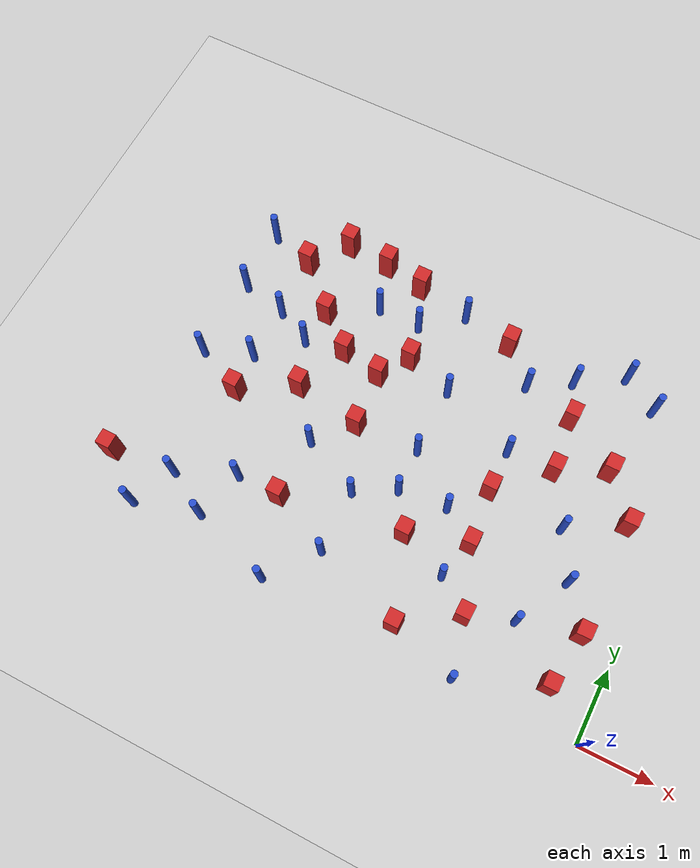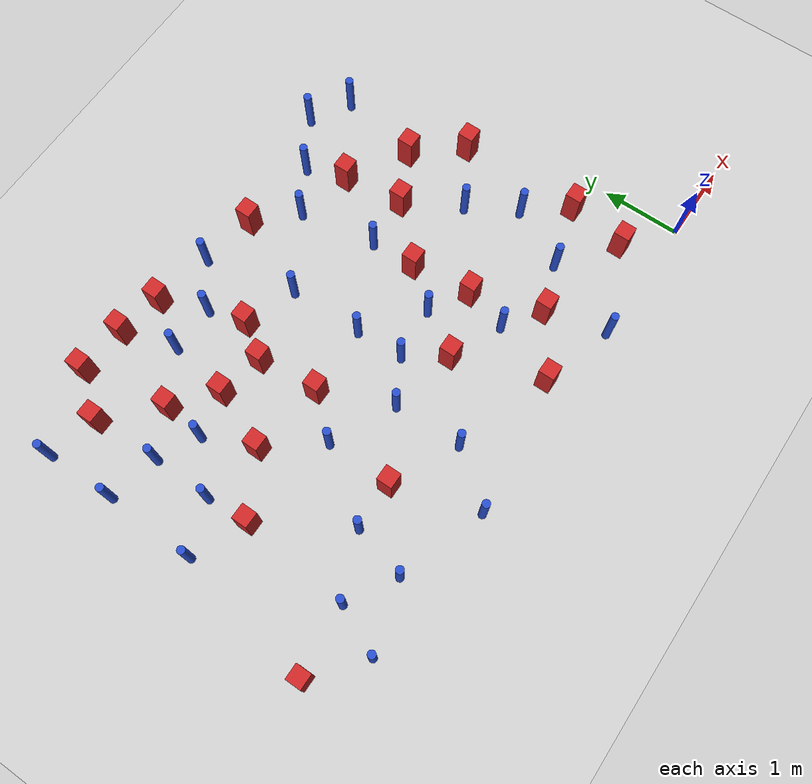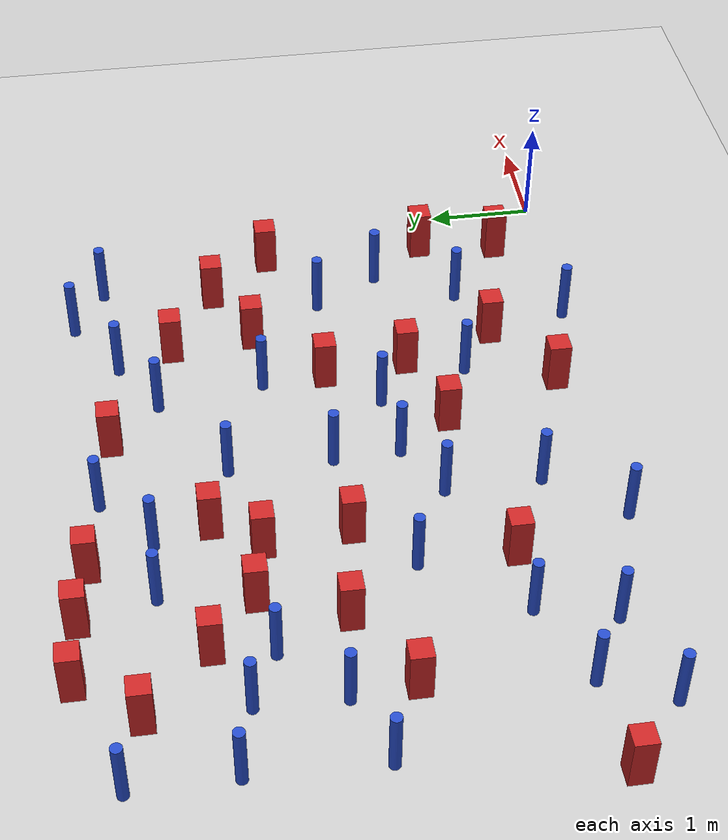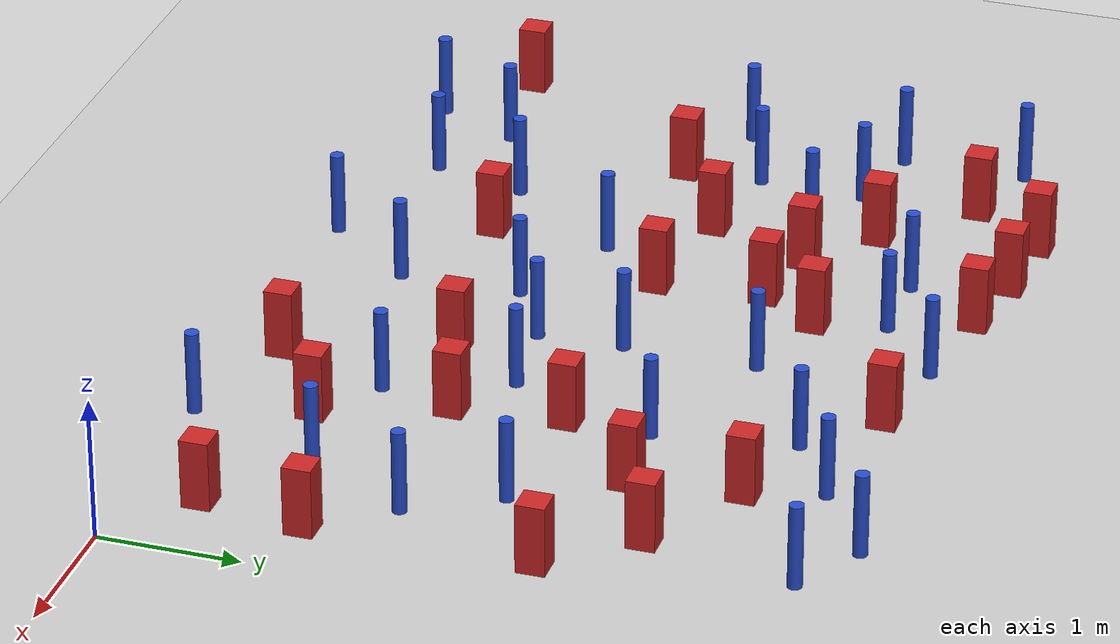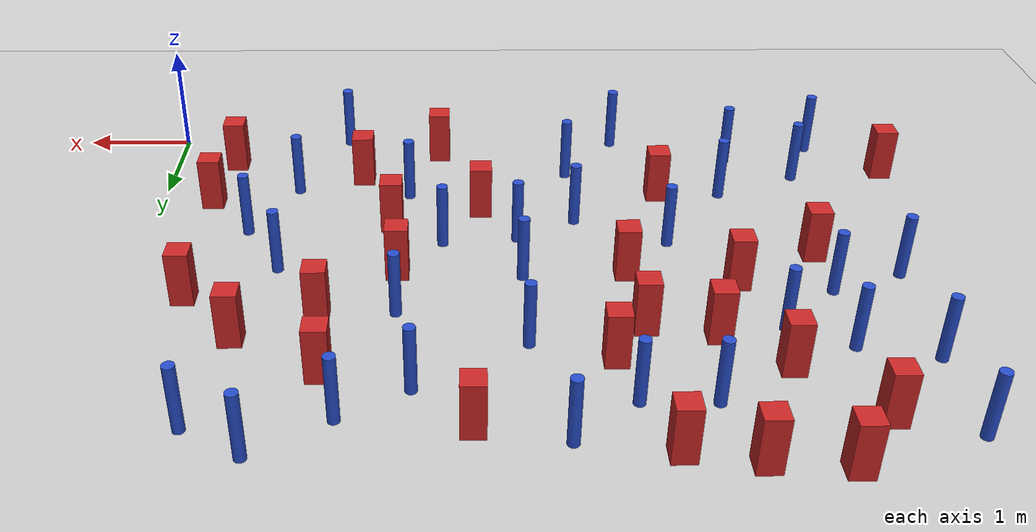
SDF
<sdf version="1.6">
 <world name="default">
  <model name="ground_plane">
   <static>1</static>
   <link name="link">
    <collision name="collision">
     <geometry><plane><normal>0 0 1</normal><size>100 100</size></plane></geometry>
     <surface><friction><ode><mu>100</mu><mu2>50</mu2></ode></friction></surface>
    </collision>
    <visual name="visual">
     <cast_shadows>0</cast_shadows>
     <geometry><plane><normal>0 0 1</normal><size>100 100</size></plane></geometry>
     <material>
      <ambient>1.0 1.0 1.0 1.0</ambient>
      <diffuse>0.8 0.8 0.8 1.0</diffuse>
      <specular>0.01 0.01 0.01 1.000000</specular>
     </material>
    </visual>
   </link>
  </model>
  <model name="pole_obstacle8">
   <static>true</static>
   <pose>-6.08702871767 0.780970293844 2.88873142074e-08 -9.90536689837e-09 4.60219948989e-07 -1.2096599496e-07</pose>
   <link name="link">
    <pose>0 0 0.3 0 -0 0</pose>
    <inertial>
     <mass>1</mass>
     <inertia><ixx>0.145833</ixx><ixy>0</ixy><ixz>0</ixz><iyy>0.145833</iyy><iyz>0</iyz><izz>0.125</izz></inertia>
    </inertial>
    <collision name="collision">
     <geometry><cylinder><radius>0.05</radius><length>.6</length></cylinder></geometry>
    </collision>
    <visual name="visual">
     <geometry><cylinder><radius>0.05</radius><length>.6</length></cylinder></geometry>
     <material>
      <script><name>Gazebo/Blue</name><uri>file://media/materials/scripts/gazebo.material</uri></script>
     </material>
    </visual>
   </link>
  </model>
  <model name="pole_obstacle18">
   <static>true</static>
   <pose>-2.46120198781 3.99202360485 2.88873142074e-08 -9.90536690801e-09 4.60219948966e-07 -1.20965994976e-07</pose>
   <link name="link">
    <pose>0 0 0.3 0 -0 0</pose>
    <inertial>
     <mass>1</mass>
     <inertia><ixx>0.145833</ixx><ixy>0</ixy><ixz>0</ixz><iyy>0.145833</iyy><iyz>0</iyz><izz>0.125</izz></inertia>
    </inertial>
    <collision name="collision">
     <geometry><cylinder><radius>0.05</radius><length>.6</length></cylinder></geometry>
    </collision>
    <visual name="visual">
     <geometry><cylinder><radius>0.05</radius><length>.6</length></cylinder></geometry>
     <material>
      <script><name>Gazebo/Blue</name><uri>file://media/materials/scripts/gazebo.material</uri></script>
     </material>
    </visual>
   </link>
  </model>
  <model name="pole_obstacle19">
   <static>true</static>
   <pose>-4.16638657633 4.14378427516 2.88873142074e-08 -9.90536690842e-09 4.60219948965e-07 -1.20965994976e-07</pose>
   <link name="link">
    <pose>0 0 0.3 0 -0 0</pose>
    <inertial>
     <mass>1</mass>
     <inertia><ixx>0.145833</ixx><ixy>0</ixy><ixz>0</ixz><iyy>0.145833</iyy><iyz>0</iyz><izz>0.125</izz></inertia>
    </inertial>
    <collision name="collision">
     <geometry><cylinder><radius>0.05</radius><length>.6</length></cylinder></geometry>
    </collision>
    <visual name="visual">
     <geometry><cylinder><radius>0.05</radius><length>.6</length></cylinder></geometry>
     <material>
      <script><name>Gazebo/Blue</name><uri>file://media/materials/scripts/gazebo.material</uri></script>
     </material>
    </visual>
   </link>
  </model>
  <model name="square_post_obstacle17">
   <static>true</static>
   <pose>-4.39659818621 4.70377155817 8.22691968438e-08 7.2212513382e-06 -7.54495500217e-07 2.29674213826e-05</pose>
   <link name="link">
    <pose>0 0 0.25 0 -0 0</pose>
    <inertial>
     <mass>100</mass>
     <inertia>
      <ixx>0.166667</ixx>
      <ixy>0</ixy>
      <ixz>0</ixz>
      <iyy>0.166667</iyy>
      <iyz>0</iyz>
      <izz>0.166667</izz>
     </inertia>
    </inertial>
    <collision name="collision"><geometry><box><size>.2 .2 .5</size></box></geometry></collision>
    <visual name="visual">
     <geometry><box><size>.2 .2 .5</size></box></geometry>
     <material>
      <script><name>Gazebo/Red</name><uri>file://media/materials/scripts/gazebo.material</uri></script>
     </material>
    </visual>
   </link>
  </model>
  <model name="pole_obstacle35">
   <static>true</static>
   <pose>-5.96639975818 3.48804016924 2.88873142074e-08 -9.90536690245e-09 4.6021994898e-07 -1.20965994966e-07</pose>
   <link name="link">
    <pose>0 0 0.3 0 -0 0</pose>
    <inertial>
     <mass>1</mass>
     <inertia><ixx>0.145833</ixx><ixy>0</ixy><ixz>0</ixz><iyy>0.145833</iyy><iyz>0</iyz><izz>0.125</izz></inertia>
    </inertial>
    <collision name="collision">
     <geometry><cylinder><radius>0.05</radius><length>.6</length></cylinder></geometry>
    </collision>
    <visual name="visual">
     <geometry><cylinder><radius>0.05</radius><length>.6</length></cylinder></geometry>
     <material>
      <script><name>Gazebo/Blue</name><uri>file://media/materials/scripts/gazebo.material</uri></script>
     </material>
    </visual>
   </link>
  </model>
  <model name="square_post_obstacle33">
   <static>true</static>
   <pose>-5.39392176758 3.75570370968 8.22691968438e-08 7.2212513382e-06 -7.54495500217e-07 2.29674213826e-05</pose>
   <link name="link">
    <pose>0 0 0.25 0 -0 0</pose>
    <inertial>
     <mass>100</mass>
     <inertia>
      <ixx>0.166667</ixx>
      <ixy>0</ixy>
      <ixz>0</ixz>
      <iyy>0.166667</iyy>
      <iyz>0</iyz>
      <izz>0.166667</izz>
     </inertia>
    </inertial>
    <collision name="collision"><geometry><box><size>.2 .2 .5</size></box></geometry></collision>
    <visual name="visual">
     <geometry><box><size>.2 .2 .5</size></box></geometry>
     <material>
      <script><name>Gazebo/Red</name><uri>file://media/materials/scripts/gazebo.material</uri></script>
     </material>
    </visual>
   </link>
  </model>
  <model name="pole_obstacle44">
   <static>true</static>
   <pose>-3.3786044187 3.43538637885 2.88873142074e-08 -9.90536689597e-09 4.60219948995e-07 -1.20965994957e-07</pose>
   <link name="link">
    <pose>0 0 0.3 0 -0 0</pose>
    <inertial>
     <mass>1</mass>
     <inertia><ixx>0.145833</ixx><ixy>0</ixy><ixz>0</ixz><iyy>0.145833</iyy><iyz>0</iyz><izz>0.125</izz></inertia>
    </inertial>
    <collision name="collision">
     <geometry><cylinder><radius>0.05</radius><length>.6</length></cylinder></geometry>
    </collision>
    <visual name="visual">
     <geometry><cylinder><radius>0.05</radius><length>.6</length></cylinder></geometry>
     <material>
      <script><name>Gazebo/Blue</name><uri>file://media/materials/scripts/gazebo.material</uri></script>
     </material>
    </visual>
   </link>
  </model>
  <model name="square_post_obstacle37">
   <static>true</static>
   <pose>-2.61984374398 0.304856421643 8.22691968438e-08 7.2212513382e-06 -7.54495500217e-07 2.29674213826e-05</pose>
   <link name="link">
    <pose>0 0 0.25 0 -0 0</pose>
    <inertial>
     <mass>100</mass>
     <inertia>
      <ixx>0.166667</ixx>
      <ixy>0</ixy>
      <ixz>0</ixz>
      <iyy>0.166667</iyy>
      <iyz>0</iyz>
      <izz>0.166667</izz>
     </inertia>
    </inertial>
    <collision name="collision"><geometry><box><size>.2 .2 .5</size></box></geometry></collision>
    <visual name="visual">
     <geometry><box><size>.2 .2 .5</size></box></geometry>
     <material>
      <script><name>Gazebo/Red</name><uri>file://media/materials/scripts/gazebo.material</uri></script>
     </material>
    </visual>
   </link>
  </model>
  <model name="pole_obstacle49">
   <static>true</static>
   <pose>-4.76651468999 4.15278222639 2.88873142074e-08 -9.90536690842e-09 4.60219948965e-07 -1.20965994976e-07</pose>
   <link name="link">
    <pose>0 0 0.3 0 -0 0</pose>
    <inertial>
     <mass>1</mass>
     <inertia><ixx>0.145833</ixx><ixy>0</ixy><ixz>0</ixz><iyy>0.145833</iyy><iyz>0</iyz><izz>0.125</izz></inertia>
    </inertial>
    <collision name="collision">
     <geometry><cylinder><radius>0.05</radius><length>.6</length></cylinder></geometry>
    </collision>
    <visual name="visual">
     <geometry><cylinder><radius>0.05</radius><length>.6</length></cylinder></geometry>
     <material>
      <script><name>Gazebo/Blue</name><uri>file://media/materials/scripts/gazebo.material</uri></script>
     </material>
    </visual>
   </link>
  </model>
  <model name="pole_obstacle54">
   <static>true</static>
   <pose>-6.63152640773 2.47795766279 2.88873142074e-08 -9.90536690245e-09 4.6021994898e-07 -1.20965994966e-07</pose>
   <link name="link">
    <pose>0 0 0.3 0 -0 0</pose>
    <inertial>
     <mass>1</mass>
     <inertia><ixx>0.145833</ixx><ixy>0</ixy><ixz>0</ixz><iyy>0.145833</iyy><iyz>0</iyz><izz>0.125</izz></inertia>
    </inertial>
    <collision name="collision">
     <geometry><cylinder><radius>0.05</radius><length>.6</length></cylinder></geometry>
    </collision>
    <visual name="visual">
     <geometry><cylinder><radius>0.05</radius><length>.6</length></cylinder></geometry>
     <material>
      <script><name>Gazebo/Blue</name><uri>file://media/materials/scripts/gazebo.material</uri></script>
     </material>
    </visual>
   </link>
  </model>
  <model name="pole_obstacle63">
   <static>true</static>
   <pose>-1.28793393635 4.71703509734 2.88873142074e-08 -9.90536689852e-09 4.60219948989e-07 -1.2096599496e-07</pose>
   <link name="link">
    <pose>0 0 0.3 0 -0 0</pose>
    <inertial>
     <mass>1</mass>
     <inertia><ixx>0.145833</ixx><ixy>0</ixy><ixz>0</ixz><iyy>0.145833</iyy><iyz>0</iyz><izz>0.125</izz></inertia>
    </inertial>
    <collision name="collision">
     <geometry><cylinder><radius>0.05</radius><length>.6</length></cylinder></geometry>
    </collision>
    <visual name="visual">
     <geometry><cylinder><radius>0.05</radius><length>.6</length></cylinder></geometry>
     <material>
      <script><name>Gazebo/Blue</name><uri>file://media/materials/scripts/gazebo.material</uri></script>
     </material>
    </visual>
   </link>
  </model>
  <model name="square_post_obstacle52">
   <static>true</static>
   <pose>-1.65613493312 3.04439027999 8.22691968438e-08 7.2212513382e-06 -7.54495500217e-07 2.29674213826e-05</pose>
   <link name="link">
    <pose>0 0 0.25 0 -0 0</pose>
    <inertial>
     <mass>100</mass>
     <inertia>
      <ixx>0.166667</ixx>
      <ixy>0</ixy>
      <ixz>0</ixz>
      <iyy>0.166667</iyy>
      <iyz>0</iyz>
      <izz>0.166667</izz>
     </inertia>
    </inertial>
    <collision name="collision"><geometry><box><size>.2 .2 .5</size></box></geometry></collision>
    <visual name="visual">
     <geometry><box><size>.2 .2 .5</size></box></geometry>
     <material>
      <script><name>Gazebo/Red</name><uri>file://media/materials/scripts/gazebo.material</uri></script>
     </material>
    </visual>
   </link>
  </model>
  <model name="square_post_obstacle53">
   <static>true</static>
   <pose>-0.511574262024 2.79065879667 8.22691968438e-08 7.2212513382e-06 -7.54495500217e-07 2.29674213826e-05</pose>
   <link name="link">
    <pose>0 0 0.25 0 -0 0</pose>
    <inertial>
     <mass>100</mass>
     <inertia>
      <ixx>0.166667</ixx>
      <ixy>0</ixy>
      <ixz>0</ixz>
      <iyy>0.166667</iyy>
      <iyz>0</iyz>
      <izz>0.166667</izz>
     </inertia>
    </inertial>
    <collision name="collision"><geometry><box><size>.2 .2 .5</size></box></geometry></collision>
    <visual name="visual">
     <geometry><box><size>.2 .2 .5</size></box></geometry>
     <material>
      <script><name>Gazebo/Red</name><uri>file://media/materials/scripts/gazebo.material</uri></script>
     </material>
    </visual>
   </link>
  </model>
  <model name="square_post_obstacle54">
   <static>true</static>
   <pose>-1.89081912094 0.789639610185 8.22691968438e-08 7.2212513382e-06 -7.54495500217e-07 2.29674213826e-05</pose>
   <link name="link">
    <pose>0 0 0.25 0 -0 0</pose>
    <inertial>
     <mass>100</mass>
     <inertia>
      <ixx>0.166667</ixx>
      <ixy>0</ixy>
      <ixz>0</ixz>
      <iyy>0.166667</iyy>
      <iyz>0</iyz>
      <izz>0.166667</izz>
     </inertia>
    </inertial>
    <collision name="collision"><geometry><box><size>.2 .2 .5</size></box></geometry></collision>
    <visual name="visual">
     <geometry><box><size>.2 .2 .5</size></box></geometry>
     <material>
      <script><name>Gazebo/Red</name><uri>file://media/materials/scripts/gazebo.material</uri></script>
     </material>
    </visual>
   </link>
  </model>
  <model name="square_post_obstacle62">
   <static>true</static>
   <pose>-0.491331566795 1.2318013536 8.22691968438e-08 7.2212513382e-06 -7.54495500217e-07 2.29674213826e-05</pose>
   <link name="link">
    <pose>0 0 0.25 0 -0 0</pose>
    <inertial>
     <mass>100</mass>
     <inertia>
      <ixx>0.166667</ixx>
      <ixy>0</ixy>
      <ixz>0</ixz>
      <iyy>0.166667</iyy>
      <iyz>0</iyz>
      <izz>0.166667</izz>
     </inertia>
    </inertial>
    <collision name="collision"><geometry><box><size>.2 .2 .5</size></box></geometry></collision>
    <visual name="visual">
     <geometry><box><size>.2 .2 .5</size></box></geometry>
     <material>
      <script><name>Gazebo/Red</name><uri>file://media/materials/scripts/gazebo.material</uri></script>
     </material>
    </visual>
   </link>
  </model>
  <model name="pole_obstacle74">
   <static>true</static>
   <pose>-3.87952141674 1.58401777399 2.88873142074e-08 -9.90536691123e-09 4.60219948959e-07 -1.20965994982e-07</pose>
   <link name="link">
    <pose>0 0 0.3 0 -0 0</pose>
    <inertial>
     <mass>1</mass>
     <inertia><ixx>0.145833</ixx><ixy>0</ixy><ixz>0</ixz><iyy>0.145833</iyy><iyz>0</iyz><izz>0.125</izz></inertia>
    </inertial>
    <collision name="collision">
     <geometry><cylinder><radius>0.05</radius><length>.6</length></cylinder></geometry>
    </collision>
    <visual name="visual">
     <geometry><cylinder><radius>0.05</radius><length>.6</length></cylinder></geometry>
     <material>
      <script><name>Gazebo/Blue</name><uri>file://media/materials/scripts/gazebo.material</uri></script>
     </material>
    </visual>
   </link>
  </model>
  <model name="pole_obstacle75">
   <static>true</static>
   <pose>-5.46699281634 3.24095808692 2.88873142074e-08 -9.90536690245e-09 4.6021994898e-07 -1.20965994966e-07</pose>
   <link name="link">
    <pose>0 0 0.3 0 -0 0</pose>
    <inertial>
     <mass>1</mass>
     <inertia><ixx>0.145833</ixx><ixy>0</ixy><ixz>0</ixz><iyy>0.145833</iyy><iyz>0</iyz><izz>0.125</izz></inertia>
    </inertial>
    <collision name="collision">
     <geometry><cylinder><radius>0.05</radius><length>.6</length></cylinder></geometry>
    </collision>
    <visual name="visual">
     <geometry><cylinder><radius>0.05</radius><length>.6</length></cylinder></geometry>
     <material>
      <script><name>Gazebo/Blue</name><uri>file://media/materials/scripts/gazebo.material</uri></script>
     </material>
    </visual>
   </link>
  </model>
  <model name="square_post_obstacle75">
   <static>true</static>
   <pose>-4.04573800707 3.64724179478 8.22691968438e-08 7.2212513382e-06 -7.54495500217e-07 2.29674213826e-05</pose>
   <link name="link">
    <pose>0 0 0.25 0 -0 0</pose>
    <inertial>
     <mass>100</mass>
     <inertia>
      <ixx>0.166667</ixx>
      <ixy>0</ixy>
      <ixz>0</ixz>
      <iyy>0.166667</iyy>
      <iyz>0</iyz>
      <izz>0.166667</izz>
     </inertia>
    </inertial>
    <collision name="collision"><geometry><box><size>.2 .2 .5</size></box></geometry></collision>
    <visual name="visual">
     <geometry><box><size>.2 .2 .5</size></box></geometry>
     <material>
      <script><name>Gazebo/Red</name><uri>file://media/materials/scripts/gazebo.material</uri></script>
     </material>
    </visual>
   </link>
  </model>
  <model name="square_post_obstacle85">
   <static>true</static>
   <pose>-6.96645169467 0.690153305032 8.22691968438e-08 7.2212513382e-06 -7.54495500217e-07 2.29674213826e-05</pose>
   <link name="link">
    <pose>0 0 0.25 0 -0 0</pose>
    <inertial>
     <mass>100</mass>
     <inertia>
      <ixx>0.166667</ixx>
      <ixy>0</ixy>
      <ixz>0</ixz>
      <iyy>0.166667</iyy>
      <iyz>0</iyz>
      <izz>0.166667</izz>
     </inertia>
    </inertial>
    <collision name="collision"><geometry><box><size>.2 .2 .5</size></box></geometry></collision>
    <visual name="visual">
     <geometry><box><size>.2 .2 .5</size></box></geometry>
     <material>
      <script><name>Gazebo/Red</name><uri>file://media/materials/scripts/gazebo.material</uri></script>
     </material>
    </visual>
   </link>
  </model>
  <model name="pole_obstacle93">
   <static>true</static>
   <pose>-2.67239039964 1.95381390901 2.88873142074e-08 -9.90536690039e-09 4.60219948984e-07 -1.20965994965e-07</pose>
   <link name="link">
    <pose>0 0 0.3 0 -0 0</pose>
    <inertial>
     <mass>1</mass>
     <inertia><ixx>0.145833</ixx><ixy>0</ixy><ixz>0</ixz><iyy>0.145833</iyy><iyz>0</iyz><izz>0.125</izz></inertia>
    </inertial>
    <collision name="collision">
     <geometry><cylinder><radius>0.05</radius><length>.6</length></cylinder></geometry>
    </collision>
    <visual name="visual">
     <geometry><cylinder><radius>0.05</radius><length>.6</length></cylinder></geometry>
     <material>
      <script><name>Gazebo/Blue</name><uri>file://media/materials/scripts/gazebo.material</uri></script>
     </material>
    </visual>
   </link>
  </model>
  <model name="pole_obstacle95">
   <static>true</static>
   <pose>-6.61462514864 4.52468187698 2.88873142074e-08 -9.90536690842e-09 4.60219948965e-07 -1.20965994976e-07</pose>
   <link name="link">
    <pose>0 0 0.3 0 -0 0</pose>
    <inertial>
     <mass>1</mass>
     <inertia><ixx>0.145833</ixx><ixy>0</ixy><ixz>0</ixz><iyy>0.145833</iyy><iyz>0</iyz><izz>0.125</izz></inertia>
    </inertial>
    <collision name="collision">
     <geometry><cylinder><radius>0.05</radius><length>.6</length></cylinder></geometry>
    </collision>
    <visual name="visual">
     <geometry><cylinder><radius>0.05</radius><length>.6</length></cylinder></geometry>
     <material>
      <script><name>Gazebo/Blue</name><uri>file://media/materials/scripts/gazebo.material</uri></script>
     </material>
    </visual>
   </link>
  </model>
  <model name="square_post_obstacle89">
   <static>true</static>
   <pose>-2.20447611351 1.65569571064 8.22691968438e-08 7.2212513382e-06 -7.54495500217e-07 2.29674213826e-05</pose>
   <link name="link">
    <pose>0 0 0.25 0 -0 0</pose>
    <inertial>
     <mass>100</mass>
     <inertia>
      <ixx>0.166667</ixx>
      <ixy>0</ixy>
      <ixz>0</ixz>
      <iyy>0.166667</iyy>
      <iyz>0</iyz>
      <izz>0.166667</izz>
     </inertia>
    </inertial>
    <collision name="collision"><geometry><box><size>.2 .2 .5</size></box></geometry></collision>
    <visual name="visual">
     <geometry><box><size>.2 .2 .5</size></box></geometry>
     <material>
      <script><name>Gazebo/Red</name><uri>file://media/materials/scripts/gazebo.material</uri></script>
     </material>
    </visual>
   </link>
  </model>
  <model name="square_post_obstacle98">
   <static>true</static>
   <pose>-5.59267079207 4.86462442567 8.22691968438e-08 7.22125133819e-06 -7.54495500217e-07 2.29674213826e-05</pose>
   <link name="link">
    <pose>0 0 0.25 0 -0 0</pose>
    <inertial>
     <mass>100</mass>
     <inertia>
      <ixx>0.166667</ixx>
      <ixy>0</ixy>
      <ixz>0</ixz>
      <iyy>0.166667</iyy>
      <iyz>0</iyz>
      <izz>0.166667</izz>
     </inertia>
    </inertial>
    <collision name="collision"><geometry><box><size>.2 .2 .5</size></box></geometry></collision>
    <visual name="visual">
     <geometry><box><size>.2 .2 .5</size></box></geometry>
     <material>
      <script><name>Gazebo/Red</name><uri>file://media/materials/scripts/gazebo.material</uri></script>
     </material>
    </visual>
   </link>
  </model>
  <model name="pole_obstacle105">
   <static>true</static>
   <pose>-5.48721661137 0.43255739235 2.88873142074e-08 -9.90536689981e-09 4.60219948986e-07 -1.20965994962e-07</pose>
   <link name="link">
    <pose>0 0 0.3 0 -0 0</pose>
    <inertial>
     <mass>1</mass>
     <inertia><ixx>0.145833</ixx><ixy>0</ixy><ixz>0</ixz><iyy>0.145833</iyy><iyz>0</iyz><izz>0.125</izz></inertia>
    </inertial>
    <collision name="collision">
     <geometry><cylinder><radius>0.05</radius><length>.6</length></cylinder></geometry>
    </collision>
    <visual name="visual">
     <geometry><cylinder><radius>0.05</radius><length>.6</length></cylinder></geometry>
     <material>
      <script><name>Gazebo/Blue</name><uri>file://media/materials/scripts/gazebo.material</uri></script>
     </material>
    </visual>
   </link>
  </model>
  <model name="pole_obstacle107">
   <static>true</static>
   <pose>-1.24091257631 2.3623283403 2.88873142074e-08 -9.90536689791e-09 4.6021994899e-07 -1.20965994959e-07</pose>
   <link name="link">
    <pose>0 0 0.3 0 -0 0</pose>
    <inertial>
     <mass>1</mass>
     <inertia><ixx>0.145833</ixx><ixy>0</ixy><ixz>0</ixz><iyy>0.145833</iyy><iyz>0</iyz><izz>0.125</izz></inertia>
    </inertial>
    <collision name="collision">
     <geometry><cylinder><radius>0.05</radius><length>.6</length></cylinder></geometry>
    </collision>
    <visual name="visual">
     <geometry><cylinder><radius>0.05</radius><length>.6</length></cylinder></geometry>
     <material>
      <script><name>Gazebo/Blue</name><uri>file://media/materials/scripts/gazebo.material</uri></script>
     </material>
    </visual>
   </link>
  </model>
  <model name="pole_obstacle113">
   <static>true</static>
   <pose>-5.30587950752 1.11281269243 2.88873142074e-08 -9.90536689445e-09 4.60219948999e-07 -1.20965994956e-07</pose>
   <link name="link">
    <pose>0 0 0.3 0 -0 0</pose>
    <inertial>
     <mass>1</mass>
     <inertia><ixx>0.145833</ixx><ixy>0</ixy><ixz>0</ixz><iyy>0.145833</iyy><iyz>0</iyz><izz>0.125</izz></inertia>
    </inertial>
    <collision name="collision">
     <geometry><cylinder><radius>0.05</radius><length>.6</length></cylinder></geometry>
    </collision>
    <visual name="visual">
     <geometry><cylinder><radius>0.05</radius><length>.6</length></cylinder></geometry>
     <material>
      <script><name>Gazebo/Blue</name><uri>file://media/materials/scripts/gazebo.material</uri></script>
     </material>
    </visual>
   </link>
  </model>
  <model name="square_post_obstacle111">
   <static>true</static>
   <pose>-1.00161942013 3.36734850481 8.22691968438e-08 7.22125133819e-06 -7.54495500217e-07 2.29674213826e-05</pose>
   <link name="link">
    <pose>0 0 0.25 0 -0 0</pose>
    <inertial>
     <mass>100</mass>
     <inertia>
      <ixx>0.166667</ixx>
      <ixy>0</ixy>
      <ixz>0</ixz>
      <iyy>0.166667</iyy>
      <iyz>0</iyz>
      <izz>0.166667</izz>
     </inertia>
    </inertial>
    <collision name="collision"><geometry><box><size>.2 .2 .5</size></box></geometry></collision>
    <visual name="visual">
     <geometry><box><size>.2 .2 .5</size></box></geometry>
     <material>
      <script><name>Gazebo/Red</name><uri>file://media/materials/scripts/gazebo.material</uri></script>
     </material>
    </visual>
   </link>
  </model>
  <model name="square_post_obstacle119">
   <static>true</static>
   <pose>-0.604815566476 0.487014594316 8.22691968438e-08 7.22125133819e-06 -7.54495500217e-07 2.29674213826e-05</pose>
   <link name="link">
    <pose>0 0 0.25 0 -0 0</pose>
    <inertial>
     <mass>100</mass>
     <inertia>
      <ixx>0.166667</ixx>
      <ixy>0</ixy>
      <ixz>0</ixz>
      <iyy>0.166667</iyy>
      <iyz>0</iyz>
      <izz>0.166667</izz>
     </inertia>
    </inertial>
    <collision name="collision"><geometry><box><size>.2 .2 .5</size></box></geometry></collision>
    <visual name="visual">
     <geometry><box><size>.2 .2 .5</size></box></geometry>
     <material>
      <script><name>Gazebo/Red</name><uri>file://media/materials/scripts/gazebo.material</uri></script>
     </material>
    </visual>
   </link>
  </model>
  <model name="square_post_obstacle120">
   <static>true</static>
   <pose>-2.92671027174 4.44281255111 8.22691968438e-08 7.2212513382e-06 -7.54495500217e-07 2.29674213826e-05</pose>
   <link name="link">
    <pose>0 0 0.25 0 -0 0</pose>
    <inertial>
     <mass>100</mass>
     <inertia>
      <ixx>0.166667</ixx>
      <ixy>0</ixy>
      <ixz>0</ixz>
      <iyy>0.166667</iyy>
      <iyz>0</iyz>
      <izz>0.166667</izz>
     </inertia>
    </inertial>
    <collision name="collision"><geometry><box><size>.2 .2 .5</size></box></geometry></collision>
    <visual name="visual">
     <geometry><box><size>.2 .2 .5</size></box></geometry>
     <material>
      <script><name>Gazebo/Red</name><uri>file://media/materials/scripts/gazebo.material</uri></script>
     </material>
    </visual>
   </link>
  </model>
  <model name="pole_obstacle120">
   <static>true</static>
   <pose>-2.29878198301 3.01218860789 2.88873142074e-08 -9.90536690232e-09 4.6021994898e-07 -1.20965994968e-07</pose>
   <link name="link">
    <pose>0 0 0.3 0 -0 0</pose>
    <inertial>
     <mass>1</mass>
     <inertia><ixx>0.145833</ixx><ixy>0</ixy><ixz>0</ixz><iyy>0.145833</iyy><iyz>0</iyz><izz>0.125</izz></inertia>
    </inertial>
    <collision name="collision">
     <geometry><cylinder><radius>0.05</radius><length>.6</length></cylinder></geometry>
    </collision>
    <visual name="visual">
     <geometry><cylinder><radius>0.05</radius><length>.6</length></cylinder></geometry>
     <material>
      <script><name>Gazebo/Blue</name><uri>file://media/materials/scripts/gazebo.material</uri></script>
     </material>
    </visual>
   </link>
  </model>
  <model name="pole_obstacle131">
   <static>true</static>
   <pose>-0.797379530841 4.42221488818 2.88873142074e-08 -9.90536689661e-09 4.60219948993e-07 -1.20965994957e-07</pose>
   <link name="link">
    <pose>0 0 0.3 0 -0 0</pose>
    <inertial>
     <mass>1</mass>
     <inertia><ixx>0.145833</ixx><ixy>0</ixy><ixz>0</ixz><iyy>0.145833</iyy><iyz>0</iyz><izz>0.125</izz></inertia>
    </inertial>
    <collision name="collision">
     <geometry><cylinder><radius>0.05</radius><length>.6</length></cylinder></geometry>
    </collision>
    <visual name="visual">
     <geometry><cylinder><radius>0.05</radius><length>.6</length></cylinder></geometry>
     <material>
      <script><name>Gazebo/Blue</name><uri>file://media/materials/scripts/gazebo.material</uri></script>
     </material>
    </visual>
   </link>
  </model>
  <model name="square_post_obstacle127">
   <static>true</static>
   <pose>-4.32714110943 3.22776627287 8.22691968438e-08 7.2212513382e-06 -7.54495500217e-07 2.29674213826e-05</pose>
   <link name="link">
    <pose>0 0 0.25 0 -0 0</pose>
    <inertial>
     <mass>100</mass>
     <inertia>
      <ixx>0.166667</ixx>
      <ixy>0</ixy>
      <ixz>0</ixz>
      <iyy>0.166667</iyy>
      <iyz>0</iyz>
      <izz>0.166667</izz>
     </inertia>
    </inertial>
    <collision name="collision"><geometry><box><size>.2 .2 .5</size></box></geometry></collision>
    <visual name="visual">
     <geometry><box><size>.2 .2 .5</size></box></geometry>
     <material>
      <script><name>Gazebo/Red</name><uri>file://media/materials/scripts/gazebo.material</uri></script>
     </material>
    </visual>
   </link>
  </model>
  <model name="pole_obstacle135">
   <static>true</static>
   <pose>-3.34364004137 1.88530435875 2.88873142074e-08 -9.90536689395e-09 4.60219949e-07 -1.20965994953e-07</pose>
   <link name="link">
    <pose>0 0 0.3 0 -0 0</pose>
    <inertial>
     <mass>1</mass>
     <inertia><ixx>0.145833</ixx><ixy>0</ixy><ixz>0</ixz><iyy>0.145833</iyy><iyz>0</iyz><izz>0.125</izz></inertia>
    </inertial>
    <collision name="collision">
     <geometry><cylinder><radius>0.05</radius><length>.6</length></cylinder></geometry>
    </collision>
    <visual name="visual">
     <geometry><cylinder><radius>0.05</radius><length>.6</length></cylinder></geometry>
     <material>
      <script><name>Gazebo/Blue</name><uri>file://media/materials/scripts/gazebo.material</uri></script>
     </material>
    </visual>
   </link>
  </model>
  <model name="square_post_obstacle140">
   <static>true</static>
   <pose>-4.26026213762 2.45643561646 8.22691968438e-08 7.2212513382e-06 -7.54495500217e-07 2.29674213826e-05</pose>
   <link name="link">
    <pose>0 0 0.25 0 -0 0</pose>
    <inertial>
     <mass>100</mass>
     <inertia>
      <ixx>0.166667</ixx>
      <ixy>0</ixy>
      <ixz>0</ixz>
      <iyy>0.166667</iyy>
      <iyz>0</iyz>
      <izz>0.166667</izz>
     </inertia>
    </inertial>
    <collision name="collision"><geometry><box><size>.2 .2 .5</size></box></geometry></collision>
    <visual name="visual">
     <geometry><box><size>.2 .2 .5</size></box></geometry>
     <material>
      <script><name>Gazebo/Red</name><uri>file://media/materials/scripts/gazebo.material</uri></script>
     </material>
    </visual>
   </link>
  </model>
  <model name="pole_obstacle146">
   <static>true</static>
   <pose>-0.893807515274 1.74917508036 2.88873142074e-08 -9.90536689855e-09 4.60219948989e-07 -1.20965994962e-07</pose>
   <link name="link">
    <pose>0 0 0.3 0 -0 0</pose>
    <inertial>
     <mass>1</mass>
     <inertia><ixx>0.145833</ixx><ixy>0</ixy><ixz>0</ixz><iyy>0.145833</iyy><iyz>0</iyz><izz>0.125</izz></inertia>
    </inertial>
    <collision name="collision">
     <geometry><cylinder><radius>0.05</radius><length>.6</length></cylinder></geometry>
    </collision>
    <visual name="visual">
     <geometry><cylinder><radius>0.05</radius><length>.6</length></cylinder></geometry>
     <material>
      <script><name>Gazebo/Blue</name><uri>file://media/materials/scripts/gazebo.material</uri></script>
     </material>
    </visual>
   </link>
  </model>
  <model name="pole_obstacle149">
   <static>true</static>
   <pose>-1.90870808905 4.32632612564 2.88873142074e-08 -9.90536689852e-09 4.60219948989e-07 -1.2096599496e-07</pose>
   <link name="link">
    <pose>0 0 0.3 0 -0 0</pose>
    <inertial>
     <mass>1</mass>
     <inertia><ixx>0.145833</ixx><ixy>0</ixy><ixz>0</ixz><iyy>0.145833</iyy><iyz>0</iyz><izz>0.125</izz></inertia>
    </inertial>
    <collision name="collision">
     <geometry><cylinder><radius>0.05</radius><length>.6</length></cylinder></geometry>
    </collision>
    <visual name="visual">
     <geometry><cylinder><radius>0.05</radius><length>.6</length></cylinder></geometry>
     <material>
      <script><name>Gazebo/Blue</name><uri>file://media/materials/scripts/gazebo.material</uri></script>
     </material>
    </visual>
   </link>
  </model>
  <model name="square_post_obstacle150">
   <static>true</static>
   <pose>-4.90041592331 3.34530825707 8.22691968438e-08 7.2212513382e-06 -7.54495500217e-07 2.29674213826e-05</pose>
   <link name="link">
    <pose>0 0 0.25 0 -0 0</pose>
    <inertial>
     <mass>100</mass>
     <inertia>
      <ixx>0.166667</ixx>
      <ixy>0</ixy>
      <ixz>0</ixz>
      <iyy>0.166667</iyy>
      <iyz>0</iyz>
      <izz>0.166667</izz>
     </inertia>
    </inertial>
    <collision name="collision"><geometry><box><size>.2 .2 .5</size></box></geometry></collision>
    <visual name="visual">
     <geometry><box><size>.2 .2 .5</size></box></geometry>
     <material>
      <script><name>Gazebo/Red</name><uri>file://media/materials/scripts/gazebo.material</uri></script>
     </material>
    </visual>
   </link>
  </model>
  <model name="square_post_obstacle152">
   <static>true</static>
   <pose>-5.19829685644 2.60479244048 8.22691968438e-08 7.2212513382e-06 -7.54495500217e-07 2.29674213826e-05</pose>
   <link name="link">
    <pose>0 0 0.25 0 -0 0</pose>
    <inertial>
     <mass>100</mass>
     <inertia>
      <ixx>0.166667</ixx>
      <ixy>0</ixy>
      <ixz>0</ixz>
      <iyy>0.166667</iyy>
      <iyz>0</iyz>
      <izz>0.166667</izz>
     </inertia>
    </inertial>
    <collision name="collision"><geometry><box><size>.2 .2 .5</size></box></geometry></collision>
    <visual name="visual">
     <geometry><box><size>.2 .2 .5</size></box></geometry>
     <material>
      <script><name>Gazebo/Red</name><uri>file://media/materials/scripts/gazebo.material</uri></script>
     </material>
    </visual>
   </link>
  </model>
  <model name="square_post_obstacle153">
   <static>true</static>
   <pose>-5.94782155 2.17205834303 8.22691968438e-08 7.2212513382e-06 -7.54495500217e-07 2.29674213826e-05</pose>
   <link name="link">
    <pose>0 0 0.25 0 -0 0</pose>
    <inertial>
     <mass>100</mass>
     <inertia>
      <ixx>0.166667</ixx>
      <ixy>0</ixy>
      <ixz>0</ixz>
      <iyy>0.166667</iyy>
      <iyz>0</iyz>
      <izz>0.166667</izz>
     </inertia>
    </inertial>
    <collision name="collision"><geometry><box><size>.2 .2 .5</size></box></geometry></collision>
    <visual name="visual">
     <geometry><box><size>.2 .2 .5</size></box></geometry>
     <material>
      <script><name>Gazebo/Red</name><uri>file://media/materials/scripts/gazebo.material</uri></script>
     </material>
    </visual>
   </link>
  </model>
  <model name="pole_obstacle162">
   <static>true</static>
   <pose>-3.86121314343 0.71377434586 2.88873142074e-08 -9.90536689285e-09 4.60219949002e-07 -1.20965994953e-07</pose>
   <link name="link">
    <pose>0 0 0.3 0 -0 0</pose>
    <inertial>
     <mass>1</mass>
     <inertia><ixx>0.145833</ixx><ixy>0</ixy><ixz>0</ixz><iyy>0.145833</iyy><iyz>0</iyz><izz>0.125</izz></inertia>
    </inertial>
    <collision name="collision">
     <geometry><cylinder><radius>0.05</radius><length>.6</length></cylinder></geometry>
    </collision>
    <visual name="visual">
     <geometry><cylinder><radius>0.05</radius><length>.6</length></cylinder></geometry>
     <material>
      <script><name>Gazebo/Blue</name><uri>file://media/materials/scripts/gazebo.material</uri></script>
     </material>
    </visual>
   </link>
  </model>
  <model name="square_post_obstacle155">
   <static>true</static>
   <pose>-1.74453231954 3.81494289824 8.22691968438e-08 7.2212513382e-06 -7.54495500217e-07 2.29674213826e-05</pose>
   <link name="link">
    <pose>0 0 0.25 0 -0 0</pose>
    <inertial>
     <mass>100</mass>
     <inertia>
      <ixx>0.166667</ixx>
      <ixy>0</ixy>
      <ixz>0</ixz>
      <iyy>0.166667</iyy>
      <iyz>0</iyz>
      <izz>0.166667</izz>
     </inertia>
    </inertial>
    <collision name="collision"><geometry><box><size>.2 .2 .5</size></box></geometry></collision>
    <visual name="visual">
     <geometry><box><size>.2 .2 .5</size></box></geometry>
     <material>
      <script><name>Gazebo/Red</name><uri>file://media/materials/scripts/gazebo.material</uri></script>
     </material>
    </visual>
   </link>
  </model>
  <model name="pole_obstacle165">
   <static>true</static>
   <pose>-3.64030780081 4.57862347415 2.88873142074e-08 -9.90536692062e-09 4.60219948937e-07 -1.20965994985e-07</pose>
   <link name="link">
    <pose>0 0 0.3 0 -0 0</pose>
    <inertial>
     <mass>1</mass>
     <inertia><ixx>0.145833</ixx><ixy>0</ixy><ixz>0</ixz><iyy>0.145833</iyy><iyz>0</iyz><izz>0.125</izz></inertia>
    </inertial>
    <collision name="collision">
     <geometry><cylinder><radius>0.05</radius><length>.6</length></cylinder></geometry>
    </collision>
    <visual name="visual">
     <geometry><cylinder><radius>0.05</radius><length>.6</length></cylinder></geometry>
     <material>
      <script><name>Gazebo/Blue</name><uri>file://media/materials/scripts/gazebo.material</uri></script>
     </material>
    </visual>
   </link>
  </model>
  <model name="square_post_obstacle162">
   <static>true</static>
   <pose>-4.70105978937 1.11897409927 8.22691968438e-08 7.2212513382e-06 -7.54495500217e-07 2.29674213826e-05</pose>
   <link name="link">
    <pose>0 0 0.25 0 -0 0</pose>
    <inertial>
     <mass>100</mass>
     <inertia>
      <ixx>0.166667</ixx>
      <ixy>0</ixy>
      <ixz>0</ixz>
      <iyy>0.166667</iyy>
      <iyz>0</iyz>
      <izz>0.166667</izz>
     </inertia>
    </inertial>
    <collision name="collision"><geometry><box><size>.2 .2 .5</size></box></geometry></collision>
    <visual name="visual">
     <geometry><box><size>.2 .2 .5</size></box></geometry>
     <material>
      <script><name>Gazebo/Red</name><uri>file://media/materials/scripts/gazebo.material</uri></script>
     </material>
    </visual>
   </link>
  </model>
  <model name="pole_obstacle167">
   <static>true</static>
   <pose>-4.37425309627 0.060949333854 2.88873142074e-08 -9.90536689361e-09 4.60219949001e-07 -1.20965994955e-07</pose>
   <link name="link">
    <pose>0 0 0.3 0 -0 0</pose>
    <inertial>
     <mass>1</mass>
     <inertia><ixx>0.145833</ixx><ixy>0</ixy><ixz>0</ixz><iyy>0.145833</iyy><iyz>0</iyz><izz>0.125</izz></inertia>
    </inertial>
    <collision name="collision">
     <geometry><cylinder><radius>0.05</radius><length>.6</length></cylinder></geometry>
    </collision>
    <visual name="visual">
     <geometry><cylinder><radius>0.05</radius><length>.6</length></cylinder></geometry>
     <material>
      <script><name>Gazebo/Blue</name><uri>file://media/materials/scripts/gazebo.material</uri></script>
     </material>
    </visual>
   </link>
  </model>
  <model name="pole_obstacle174">
   <static>true</static>
   <pose>-4.68896403905 1.96535539644 2.88873142074e-08 -9.90536689273e-09 4.60219949003e-07 -1.20965994953e-07</pose>
   <link name="link">
    <pose>0 0 0.3 0 -0 0</pose>
    <inertial>
     <mass>1</mass>
     <inertia><ixx>0.145833</ixx><ixy>0</ixy><ixz>0</ixz><iyy>0.145833</iyy><iyz>0</iyz><izz>0.125</izz></inertia>
    </inertial>
    <collision name="collision">
     <geometry><cylinder><radius>0.05</radius><length>.6</length></cylinder></geometry>
    </collision>
    <visual name="visual">
     <geometry><cylinder><radius>0.05</radius><length>.6</length></cylinder></geometry>
     <material>
      <script><name>Gazebo/Blue</name><uri>file://media/materials/scripts/gazebo.material</uri></script>
     </material>
    </visual>
   </link>
  </model>
  <model name="pole_obstacle183">
   <static>true</static>
   <pose>-6.60031716041 3.63432095257 2.88873142074e-08 -9.90536690245e-09 4.6021994898e-07 -1.20965994966e-07</pose>
   <link name="link">
    <pose>0 0 0.3 0 -0 0</pose>
    <inertial>
     <mass>1</mass>
     <inertia><ixx>0.145833</ixx><ixy>0</ixy><ixz>0</ixz><iyy>0.145833</iyy><iyz>0</iyz><izz>0.125</izz></inertia>
    </inertial>
    <collision name="collision">
     <geometry><cylinder><radius>0.05</radius><length>.6</length></cylinder></geometry>
    </collision>
    <visual name="visual">
     <geometry><cylinder><radius>0.05</radius><length>.6</length></cylinder></geometry>
     <material>
      <script><name>Gazebo/Blue</name><uri>file://media/materials/scripts/gazebo.material</uri></script>
     </material>
    </visual>
   </link>
  </model>
  <model name="pole_obstacle185">
   <static>true</static>
   <pose>-3.36872265895 2.49369573717 2.88873142074e-08 -9.90536690232e-09 4.6021994898e-07 -1.20965994968e-07</pose>
   <link name="link">
    <pose>0 0 0.3 0 -0 0</pose>
    <inertial>
     <mass>1</mass>
     <inertia><ixx>0.145833</ixx><ixy>0</ixy><ixz>0</ixz><iyy>0.145833</iyy><iyz>0</iyz><izz>0.125</izz></inertia>
    </inertial>
    <collision name="collision">
     <geometry><cylinder><radius>0.05</radius><length>.6</length></cylinder></geometry>
    </collision>
    <visual name="visual">
     <geometry><cylinder><radius>0.05</radius><length>.6</length></cylinder></geometry>
     <material>
      <script><name>Gazebo/Blue</name><uri>file://media/materials/scripts/gazebo.material</uri></script>
     </material>
    </visual>
   </link>
  </model>
  <model name="square_post_obstacle184">
   <static>true</static>
   <pose>-4.96658896747 4.81071688635 8.22691968438e-08 7.22125133819e-06 -7.54495500217e-07 2.29674213826e-05</pose>
   <link name="link">
    <pose>0 0 0.25 0 -0 0</pose>
    <inertial>
     <mass>100</mass>
     <inertia>
      <ixx>0.166667</ixx>
      <ixy>0</ixy>
      <ixz>0</ixz>
      <iyy>0.166667</iyy>
      <iyz>0</iyz>
      <izz>0.166667</izz>
     </inertia>
    </inertial>
    <collision name="collision"><geometry><box><size>.2 .2 .5</size></box></geometry></collision>
    <visual name="visual">
     <geometry><box><size>.2 .2 .5</size></box></geometry>
     <material>
      <script><name>Gazebo/Red</name><uri>file://media/materials/scripts/gazebo.material</uri></script>
     </material>
    </visual>
   </link>
  </model>
  <model name="square_post_obstacle195">
   <static>true</static>
   <pose>-5.98921053695 4.34024267537 8.22691968438e-08 7.22125133819e-06 -7.54495500217e-07 2.29674213826e-05</pose>
   <link name="link">
    <pose>0 0 0.25 0 -0 0</pose>
    <inertial>
     <mass>100</mass>
     <inertia>
      <ixx>0.166667</ixx>
      <ixy>0</ixy>
      <ixz>0</ixz>
      <iyy>0.166667</iyy>
      <iyz>0</iyz>
      <izz>0.166667</izz>
     </inertia>
    </inertial>
    <collision name="collision"><geometry><box><size>.2 .2 .5</size></box></geometry></collision>
    <visual name="visual">
     <geometry><box><size>.2 .2 .5</size></box></geometry>
     <material>
      <script><name>Gazebo/Red</name><uri>file://media/materials/scripts/gazebo.material</uri></script>
     </material>
    </visual>
   </link>
  </model>
  <model name="pole_obstacle189">
   <static>true</static>
   <pose>-1.68765673293 0.0177436398839 2.88873142074e-08 -9.90536689504e-09 4.60219948997e-07 -1.20965994956e-07</pose>
   <link name="link">
    <pose>0 0 0.3 0 -0 0</pose>
    <inertial>
     <mass>1</mass>
     <inertia><ixx>0.145833</ixx><ixy>0</ixy><ixz>0</ixz><iyy>0.145833</iyy><iyz>0</iyz><izz>0.125</izz></inertia>
    </inertial>
    <collision name="collision">
     <geometry><cylinder><radius>0.05</radius><length>.6</length></cylinder></geometry>
    </collision>
    <visual name="visual">
     <geometry><cylinder><radius>0.05</radius><length>.6</length></cylinder></geometry>
     <material>
      <script><name>Gazebo/Blue</name><uri>file://media/materials/scripts/gazebo.material</uri></script>
     </material>
    </visual>
   </link>
  </model>
  <model name="square_post_obstacle200">
   <static>true</static>
   <pose>-3.01966912598 1.40176192847 8.22691968438e-08 7.22125133819e-06 -7.54495500217e-07 2.29674213826e-05</pose>
   <link name="link">
    <pose>0 0 0.25 0 -0 0</pose>
    <inertial>
     <mass>100</mass>
     <inertia>
      <ixx>0.166667</ixx>
      <ixy>0</ixy>
      <ixz>0</ixz>
      <iyy>0.166667</iyy>
      <iyz>0</iyz>
      <izz>0.166667</izz>
     </inertia>
    </inertial>
    <collision name="collision"><geometry><box><size>.2 .2 .5</size></box></geometry></collision>
    <visual name="visual">
     <geometry><box><size>.2 .2 .5</size></box></geometry>
     <material>
      <script><name>Gazebo/Red</name><uri>file://media/materials/scripts/gazebo.material</uri></script>
     </material>
    </visual>
   </link>
  </model>
  <model name="pole_obstacle196">
   <static>true</static>
   <pose>-5.98898473194 2.7240635081 2.88873142074e-08 -9.90536690245e-09 4.6021994898e-07 -1.20965994966e-07</pose>
   <link name="link">
    <pose>0 0 0.3 0 -0 0</pose>
    <inertial>
     <mass>1</mass>
     <inertia><ixx>0.145833</ixx><ixy>0</ixy><ixz>0</ixz><iyy>0.145833</iyy><iyz>0</iyz><izz>0.125</izz></inertia>
    </inertial>
    <collision name="collision">
     <geometry><cylinder><radius>0.05</radius><length>.6</length></cylinder></geometry>
    </collision>
    <visual name="visual">
     <geometry><cylinder><radius>0.05</radius><length>.6</length></cylinder></geometry>
     <material>
      <script><name>Gazebo/Blue</name><uri>file://media/materials/scripts/gazebo.material</uri></script>
     </material>
    </visual>
   </link>
  </model>
  <model name="pole_obstacle202">
   <static>true</static>
   <pose>-6.36267264699 0.184317585433 2.88873142074e-08 -9.90536689378e-09 4.60219949e-07 -1.20965994955e-07</pose>
   <link name="link">
    <pose>0 0 0.3 0 -0 0</pose>
    <inertial>
     <mass>1</mass>
     <inertia><ixx>0.145833</ixx><ixy>0</ixy><ixz>0</ixz><iyy>0.145833</iyy><iyz>0</iyz><izz>0.125</izz></inertia>
    </inertial>
    <collision name="collision">
     <geometry><cylinder><radius>0.05</radius><length>.6</length></cylinder></geometry>
    </collision>
    <visual name="visual">
     <geometry><cylinder><radius>0.05</radius><length>.6</length></cylinder></geometry>
     <material>
      <script><name>Gazebo/Blue</name><uri>file://media/materials/scripts/gazebo.material</uri></script>
     </material>
    </visual>
   </link>
  </model>
  <model name="square_post_obstacle213">
   <static>true</static>
   <pose>-2.28770978014 2.43066618427 8.22691968438e-08 7.2212513382e-06 -7.54495500217e-07 2.29674213826e-05</pose>
   <link name="link">
    <pose>0 0 0.25 0 -0 0</pose>
    <inertial>
     <mass>100</mass>
     <inertia>
      <ixx>0.166667</ixx>
      <ixy>0</ixy>
      <ixz>0</ixz>
      <iyy>0.166667</iyy>
      <iyz>0</iyz>
      <izz>0.166667</izz>
     </inertia>
    </inertial>
    <collision name="collision"><geometry><box><size>.2 .2 .5</size></box></geometry></collision>
    <visual name="visual">
     <geometry><box><size>.2 .2 .5</size></box></geometry>
     <material>
      <script><name>Gazebo/Red</name><uri>file://media/materials/scripts/gazebo.material</uri></script>
     </material>
    </visual>
   </link>
  </model>
  <model name="pole_obstacle212">
   <static>true</static>
   <pose>-1.27917950466 1.00805226673 2.88873142074e-08 -9.90536689541e-09 4.60219948996e-07 -1.20965994955e-07</pose>
   <link name="link">
    <pose>0 0 0.3 0 -0 0</pose>
    <inertial>
     <mass>1</mass>
     <inertia><ixx>0.145833</ixx><ixy>0</ixy><ixz>0</ixz><iyy>0.145833</iyy><iyz>0</iyz><izz>0.125</izz></inertia>
    </inertial>
    <collision name="collision">
     <geometry><cylinder><radius>0.05</radius><length>.6</length></cylinder></geometry>
    </collision>
    <visual name="visual">
     <geometry><cylinder><radius>0.05</radius><length>.6</length></cylinder></geometry>
     <material>
      <script><name>Gazebo/Blue</name><uri>file://media/materials/scripts/gazebo.material</uri></script>
     </material>
    </visual>
   </link>
  </model>
  <model name="pole_obstacle219">
   <static>true</static>
   <pose>-2.34573999087 1.11232002041 2.88873142074e-08 -9.90536689395e-09 4.60219949e-07 -1.20965994953e-07</pose>
   <link name="link">
    <pose>0 0 0.3 0 -0 0</pose>
    <inertial>
     <mass>1</mass>
     <inertia><ixx>0.145833</ixx><ixy>0</ixy><ixz>0</ixz><iyy>0.145833</iyy><iyz>0</iyz><izz>0.125</izz></inertia>
    </inertial>
    <collision name="collision">
     <geometry><cylinder><radius>0.05</radius><length>.6</length></cylinder></geometry>
    </collision>
    <visual name="visual">
     <geometry><cylinder><radius>0.05</radius><length>.6</length></cylinder></geometry>
     <material>
      <script><name>Gazebo/Blue</name><uri>file://media/materials/scripts/gazebo.material</uri></script>
     </material>
    </visual>
   </link>
  </model>
 </world>
</sdf>
